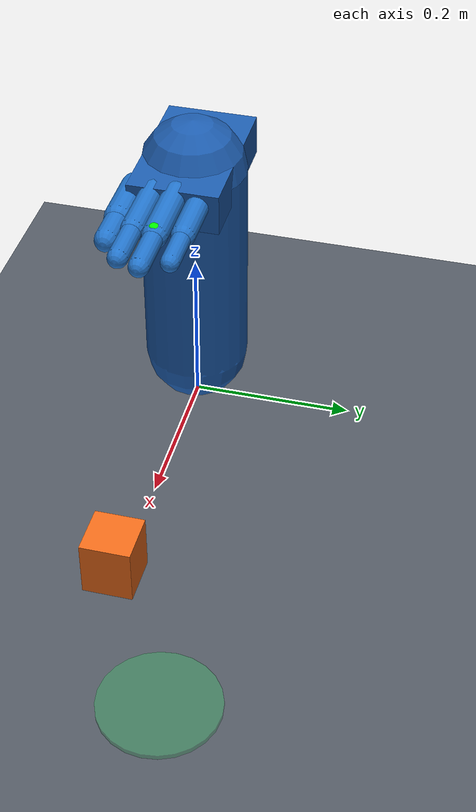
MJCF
<mujoco model="myosim_v1_hand">
  <compiler angle="radian" coordinate="local"/>
  <option timestep="0.002" gravity="0 0 -9.81" integrator="implicitfast"/>
  <default>
    <geom friction="1.0 0.01 0.001" condim="4" density="700"/>
    <joint damping="0.7" armature="0.002" limited="true"/>
    <position kp="18" ctrlrange="-0.05 1.45" forcerange="-12 12"/>
  </default>

  <asset>
    <material name="hand_blue" rgba="0.11 0.36 0.68 1"/>
    <material name="finger_blue" rgba="0.14 0.46 0.80 1"/>
    <material name="table_gray" rgba="0.32 0.35 0.39 1"/>
    <material name="object_orange" rgba="0.94 0.42 0.10 1"/>
    <material name="target_green" rgba="0.18 0.75 0.36 0.35"/>
  </asset>

  <worldbody>
    <light name="key" pos="0 -0.8 1.7" dir="0 0 -1" directional="true"/>
    <geom name="floor" type="plane" size="2 2 0.1" material="table_gray"/>
    <body name="forearm" pos="0 0 0.22">
      <joint name="forearm_x" type="slide" axis="1 0 0" range="0 0.46"/>
      <joint name="forearm_y" type="slide" axis="0 1 0" range="-0.12 0.15"/>
      <geom name="forearm_geom" type="capsule" fromto="0 0 -0.15 0 0 0.12" size="0.065" material="hand_blue"/>
      <body name="palm" pos="0 0 0.12">
        <geom name="palm_geom" type="box" size="0.09 0.055 0.025" material="hand_blue"/>
        <site name="hand_center" pos="0.07 0 0" size="0.01" rgba="1 0 0 1"/>
        <site name="pinch_site" pos="0.16 0 0.02" size="0.008" rgba="0 1 0 1"/>

        <body name="thumb" pos="0.055 -0.055 0">
          <joint name="thumb_flex" type="hinge" axis="0 1 0" range="-0.05 1.2"/>
          <geom name="thumb_proximal" type="capsule" fromto="0 0 0 0.065 0 0" size="0.017" material="finger_blue"/>
          <body name="thumb_tip" pos="0.065 0 0">
            <geom name="thumb_distal" type="capsule" fromto="0 0 0 0.045 0 0" size="0.014" material="finger_blue"/>
            <site name="thumb_contact" pos="0.045 0 0" size="0.006" rgba="0 1 1 1"/>
          </body>
        </body>

        <body name="index" pos="0.075 -0.027 0.012">
          <joint name="index_flex" type="hinge" axis="0 1 0" range="-0.05 1.45"/>
          <geom name="index_proximal" type="capsule" fromto="0 0 0 0.08 0 0" size="0.014" material="finger_blue"/>
          <body name="index_tip" pos="0.08 0 0">
            <geom name="index_distal" type="capsule" fromto="0 0 0 0.055 0 0" size="0.012" material="finger_blue"/>
            <site name="index_contact" pos="0.055 0 0" size="0.006" rgba="0 1 1 1"/>
          </body>
        </body>

        <body name="middle" pos="0.075 0.0 0.012">
          <joint name="middle_flex" type="hinge" axis="0 1 0" range="-0.05 1.45"/>
          <geom name="middle_proximal" type="capsule" fromto="0 0 0 0.085 0 0" size="0.015" material="finger_blue"/>
          <body name="middle_tip" pos="0.085 0 0">
            <geom name="middle_distal" type="capsule" fromto="0 0 0 0.06 0 0" size="0.012" material="finger_blue"/>
          </body>
        </body>

        <body name="ring" pos="0.072 0.029 0.008">
          <joint name="ring_flex" type="hinge" axis="0 1 0" range="-0.05 1.40"/>
          <geom name="ring_proximal" type="capsule" fromto="0 0 0 0.075 0 0" size="0.014" material="finger_blue"/>
          <body name="ring_tip" pos="0.075 0 0">
            <geom name="ring_distal" type="capsule" fromto="0 0 0 0.052 0 0" size="0.011" material="finger_blue"/>
          </body>
        </body>
      </body>
    </body>

    <body name="manipulation_object" pos="0.36 0 0.045">
      <freejoint name="object_free"/>
      <geom name="object_geom" type="box" size="0.03 0.03 0.035" mass="0.06" material="object_orange"/>
    </body>
    <body name="target_zone" pos="0.52 0.10 0.003">
      <geom name="target_geom" type="cylinder" size="0.07 0.003" material="target_green" contype="0" conaffinity="0"/>
    </body>
  </worldbody>

  <actuator>
    <position name="forearm_x_actuator" joint="forearm_x" kp="35" ctrlrange="0 0.46" forcerange="-45 45"/>
    <position name="forearm_y_actuator" joint="forearm_y" kp="35" ctrlrange="-0.12 0.15" forcerange="-45 45"/>
    <position name="thumb_actuator" joint="thumb_flex"/>
    <position name="index_actuator" joint="index_flex"/>
    <position name="middle_actuator" joint="middle_flex"/>
    <position name="ring_actuator" joint="ring_flex"/>
  </actuator>

  <equality>
    <weld name="grasp_weld" body1="palm" body2="manipulation_object" relpose="0 0 0 1 0 0 0" active="false"/>
  </equality>
</mujoco>
